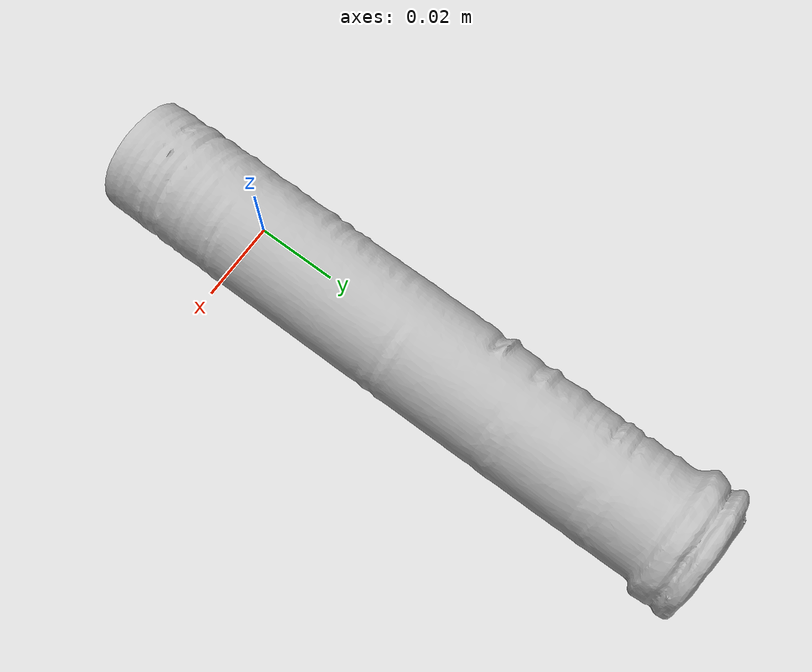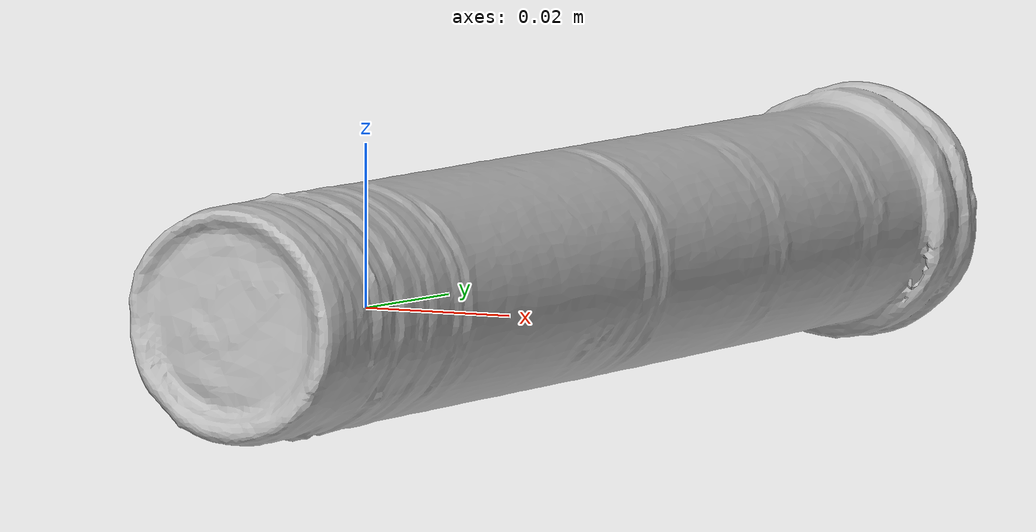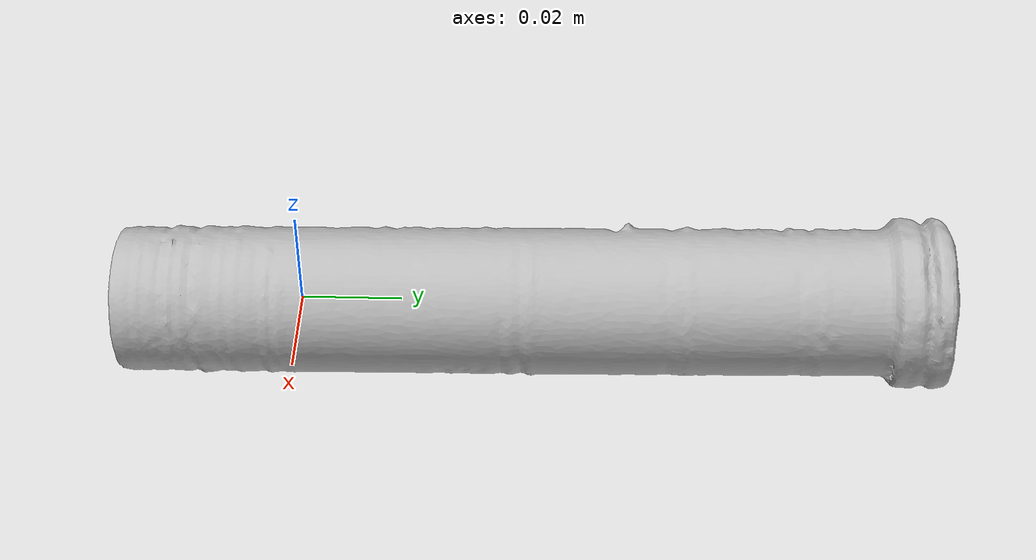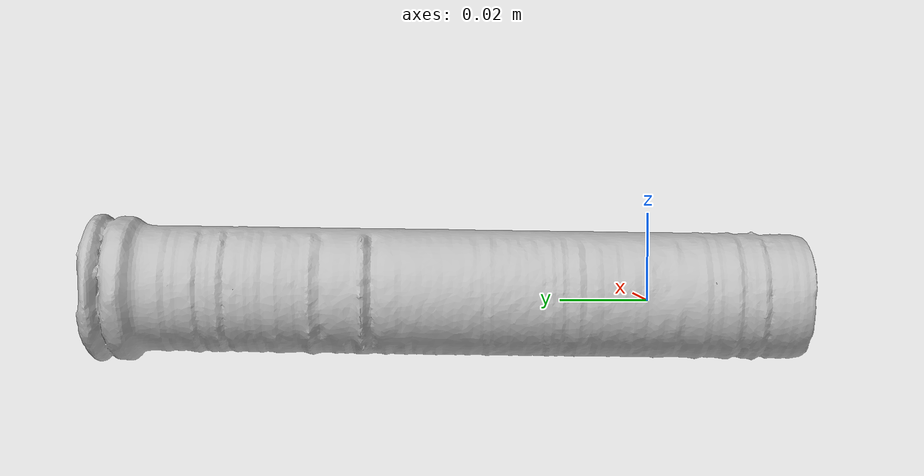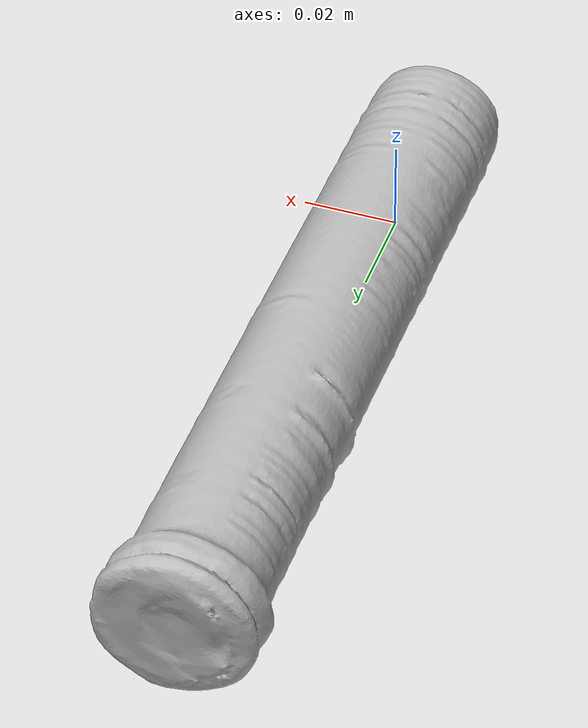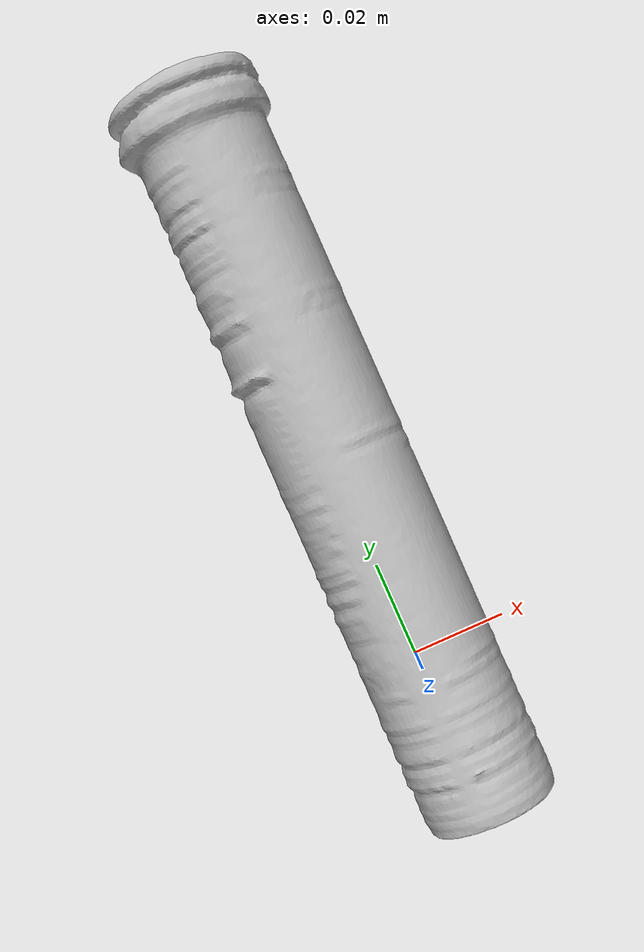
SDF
<?xml version='1.0'?>
<sdf version="1.4">
  <model name="FizzyTablets">
    <static>false</static>
    <link name="link">
      <inertial>
        <pose>0.002155945885037328 0.050820018106013894 0.001854188487964607 1.5905900997199836 -0.8025318402380168 -0.01792626990615984</pose>
        <mass>0.012784990770681648</mass>
        <inertia>
          <ixx>2.9210920212412302e-05</ixx>
          <ixy>5.310284392827969e-21</ixy>
          <ixz>1.2323584725130816e-22</ixz>
          <iyy>2.9206508434709835e-05</iyy>
          <iyz>4.267280372120751e-23</iyz>
          <izz>1.594925508427192e-06</izz>
        </inertia>
      </inertial>
      <collision name="collision">
        <geometry>
          <mesh>
            <!-- Use a downsampled mesh for collisions -->
            <uri>model:///FizzyTablets/FizzyTablets_250_collision.obj</uri>
	        </mesh>
        </geometry>
        <surface>
      </surface>
      </collision>
      <visual name="visual">
        <geometry>
          <mesh>
            <uri>model:///FizzyTablets/FizzyTablets_25k_tex.obj</uri>
	        </mesh>
        </geometry>
        <material>
          <script>
            <uri>model:///FizzyTablets/FizzyTablets.material</uri>
            <name>FizzyTablets</name>
          </script>
        </material>
      </visual>
    </link>
  </model>
</sdf>
